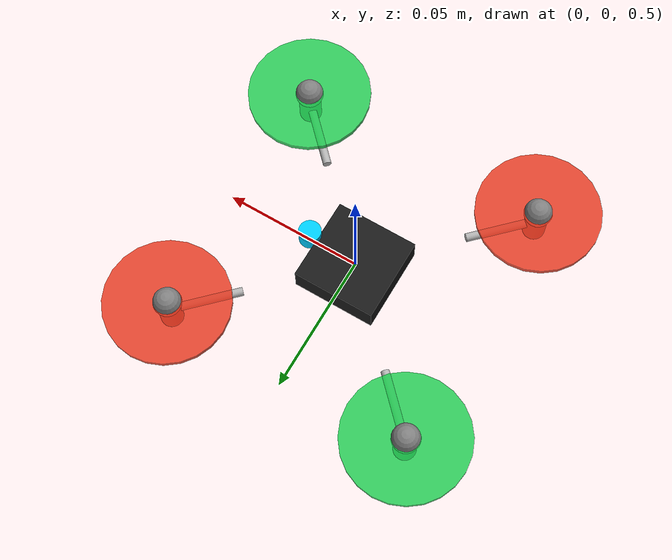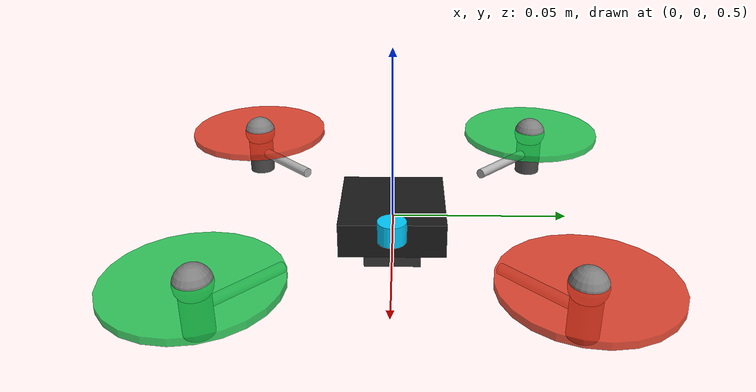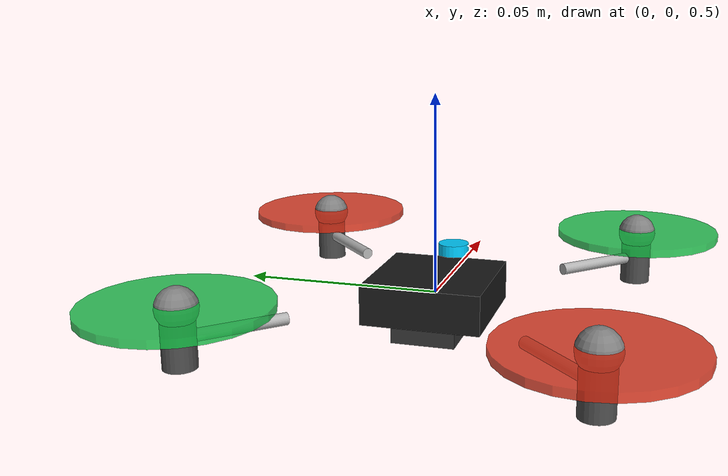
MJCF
<mujoco model="bitcraze_crazyflie_2">
  <compiler angle="degree" coordinate="local" inertiafromgeom="true"/>
  <option timestep="0.001" gravity="0 0 -9.81"/>

  <visual>
    <global offwidth="1920" offheight="1080"/>
  </visual>

  <asset>
    <texture name="grid" type="2d" builtin="checker" width="512" height="512" rgb1=".1 .2 .3" rgb2=".2 .3 .4"/>
    <material name="grid" texture="grid" texrepeat="10 10" texuniform="true" reflectance=".2"/>
    <material name="body_mat" rgba="0.1 0.1 0.1 1"/>
    <material name="arm_mat" rgba="0.7 0.7 0.7 1"/>
    <material name="prop_cw" rgba="0.1 0.8 0.3 0.85"/>
    <material name="prop_ccw" rgba="0.9 0.2 0.1 0.85"/>
    <material name="sensor_mat" rgba="0.0 0.8 1.0 1"/>
  </asset>

  <worldbody>
    <geom name="floor" size="20 20 0.01" type="plane" material="grid"/>
    <light directional="true" diffuse=".8 .8 .8" specular=".2 .2 .2" pos="0 0 5" dir="0 0 -1"/>

    <body name="crazyflie" pos="0 0 0.5">
      <freejoint name="root"/>
      <camera name="trackcam" pos="-0.5 0 0.3" xyaxes="0 -1 0 0.5 0 0.8" mode="trackcom"/>
      <camera name="fpvcam" pos="0.03 0 0.01" xyaxes="0 -1 0 0 0 1"/>

      <!-- Core PCB Base (27g total drone mass) -->
      <geom name="core" type="box" size="0.015 0.015 0.005" mass="0.015" material="body_mat"/>
      <geom name="battery" type="box" size="0.012 0.008 0.004" pos="0 0 -0.006" mass="0.008" rgba="0.2 0.2 0.2 1"/>

      <!-- Bio-inspired VOC E-Nose / Plant Anomaly Sensor Module -->
      <geom name="cov_sensor" type="cylinder" size="0.004 0.003" pos="0.018 0 0.005" mass="0.001" material="sensor_mat"/>

      <!-- Arm 1: Front Right (+x, -y) -->
      <body name="arm1" pos="0.028 -0.028 0">
        <geom name="arm1_geom" type="cylinder" fromto="0 0 0 0.018 -0.018 0" size="0.0015" mass="0.0005" material="arm_mat"/>
        <body name="motor1" pos="0.018 -0.018 0">
          <geom name="motor1_geom" type="cylinder" size="0.004 0.007" mass="0.0008" rgba="0.3 0.3 0.3 1"/>
          <geom name="prop1_geom" type="cylinder" size="0.022 0.001" pos="0 0 0.007" mass="0.0002" material="prop_cw"/>
          <site name="thrust1" pos="0 0 0.007"/>
        </body>
      </body>

      <!-- Arm 2: Rear Right (-x, -y) -->
      <body name="arm2" pos="-0.028 -0.028 0">
        <geom name="arm2_geom" type="cylinder" fromto="0 0 0 -0.018 -0.018 0" size="0.0015" mass="0.0005" material="arm_mat"/>
        <body name="motor2" pos="-0.018 -0.018 0">
          <geom name="motor2_geom" type="cylinder" size="0.004 0.007" mass="0.0008" rgba="0.3 0.3 0.3 1"/>
          <geom name="prop2_geom" type="cylinder" size="0.022 0.001" pos="0 0 0.007" mass="0.0002" material="prop_ccw"/>
          <site name="thrust2" pos="0 0 0.007"/>
        </body>
      </body>

      <!-- Arm 3: Rear Left (-x, +y) -->
      <body name="arm3" pos="-0.028 0.028 0">
        <geom name="arm3_geom" type="cylinder" fromto="0 0 0 -0.018 0.018 0" size="0.0015" mass="0.0005" material="arm_mat"/>
        <body name="motor3" pos="-0.018 0.018 0">
          <geom name="motor3_geom" type="cylinder" size="0.004 0.007" mass="0.0008" rgba="0.3 0.3 0.3 1"/>
          <geom name="prop3_geom" type="cylinder" size="0.022 0.001" pos="0 0 0.007" mass="0.0002" material="prop_cw"/>
          <site name="thrust3" pos="0 0 0.007"/>
        </body>
      </body>

      <!-- Arm 4: Front Left (+x, +y) -->
      <body name="arm4" pos="0.028 0.028 0">
        <geom name="arm4_geom" type="cylinder" fromto="0 0 0 0.018 0.018 0" size="0.0015" mass="0.0005" material="arm_mat"/>
        <body name="motor4" pos="0.018 0.018 0">
          <geom name="motor4_geom" type="cylinder" size="0.004 0.007" mass="0.0008" rgba="0.3 0.3 0.3 1"/>
          <geom name="prop4_geom" type="cylinder" size="0.022 0.001" pos="0 0 0.007" mass="0.0002" material="prop_ccw"/>
          <site name="thrust4" pos="0 0 0.007"/>
        </body>
      </body>
    </body>
  </worldbody>

  <actuator>
    <motor name="m1" gear="0 0 1 0 0 0.005" site="thrust1"/>
    <motor name="m2" gear="0 0 1 0 0 -0.005" site="thrust2"/>
    <motor name="m3" gear="0 0 1 0 0 0.005" site="thrust3"/>
    <motor name="m4" gear="0 0 1 0 0 -0.005" site="thrust4"/>
  </actuator>
</mujoco>
